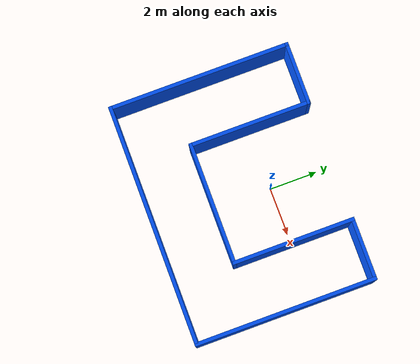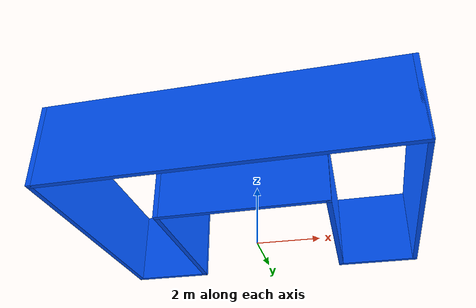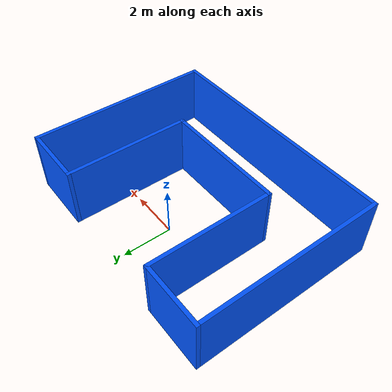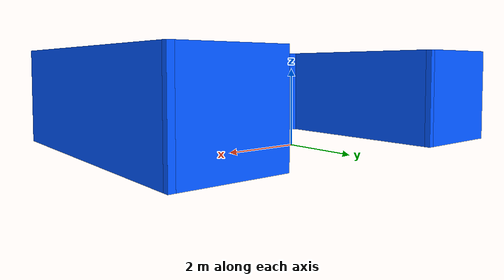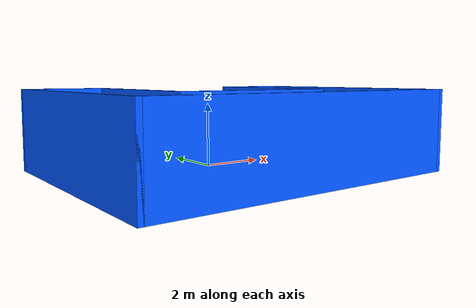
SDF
<?xml version='1.0'?>
<sdf version='1.6'>
  <model name='corridor2'>
    <pose frame=''>0 -1.25 0 0 -0 0</pose>
    <link name='Wall_1'>
      <collision name='Wall_1_Collision'>
        <geometry>
          <box>
            <size>7.65 0.15 2.5</size>
          </box>
        </geometry>
        <pose frame=''>0 0 1.25 0 -0 0</pose>
      </collision>
      <visual name='Wall_1_Visual'>
        <pose frame=''>0 0 1.25 0 -0 0</pose>
        <geometry>
          <box>
            <size>7.65 0.15 2.5</size>
          </box>
        </geometry>
        <material>
          <script>
            <uri>file://media/materials/scripts/gazebo.material</uri>
            <name>Gazebo/Grey</name>
          </script>
          <ambient>0 0.333333 1 1</ambient>
        </material>
        <meta>
          <layer>0</layer>
        </meta>
      </visual>
      <pose frame=''>-5 0 0 0 0 -1.5708</pose>
    </link>
    <link name='Wall_2'>
      <collision name='Wall_2_Collision'>
        <geometry>
          <box>
            <size>10.15 0.15 2.5</size>
          </box>
        </geometry>
        <pose frame=''>0 0 1.25 0 -0 0</pose>
      </collision>
      <visual name='Wall_2_Visual'>
        <pose frame=''>0 0 1.25 0 -0 0</pose>
        <geometry>
          <box>
            <size>10.15 0.15 2.5</size>
          </box>
        </geometry>
        <material>
          <script>
            <uri>file://media/materials/scripts/gazebo.material</uri>
            <name>Gazebo/Grey</name>
          </script>
          <ambient>0 0.333333 1 1</ambient>
        </material>
        <meta>
          <layer>0</layer>
        </meta>
      </visual>
      <pose frame=''>0 -3.75 0 0 -0 0</pose>
    </link>
    <link name='Wall_3'>
      <collision name='Wall_3_Collision'>
        <geometry>
          <box>
            <size>7.65 0.15 2.5</size>
          </box>
        </geometry>
        <pose frame=''>0 0 1.25 0 -0 0</pose>
      </collision>
      <visual name='Wall_3_Visual'>
        <pose frame=''>0 0 1.25 0 -0 0</pose>
        <geometry>
          <box>
            <size>7.65 0.15 2.5</size>
          </box>
        </geometry>
        <material>
          <script>
            <uri>file://media/materials/scripts/gazebo.material</uri>
            <name>Gazebo/Grey</name>
          </script>
          <ambient>0 0.333333 1 1</ambient>
        </material>
        <meta>
          <layer>0</layer>
        </meta>
      </visual>
      <pose frame=''>5 0 0 0 -0 1.5708</pose>
    </link>
    <link name='Wall_4'>
      <collision name='Wall_4_Collision'>
        <geometry>
          <box>
            <size>2.65 0.15 2.5</size>
          </box>
        </geometry>
        <pose frame=''>0 0 1.25 0 -0 0</pose>
      </collision>
      <visual name='Wall_4_Visual'>
        <pose frame=''>0 0 1.25 0 -0 0</pose>
        <geometry>
          <box>
            <size>2.65 0.15 2.5</size>
          </box>
        </geometry>
        <material>
          <script>
            <uri>file://media/materials/scripts/gazebo.material</uri>
            <name>Gazebo/Grey</name>
          </script>
          <ambient>0 0.333333 1 1</ambient>
        </material>
        <meta>
          <layer>0</layer>
        </meta>
      </visual>
      <pose frame=''>3.75 3.75 0 0 -0 3.14159</pose>
    </link>
    <link name='Wall_5'>
      <collision name='Wall_5_Collision'>
        <geometry>
          <box>
            <size>5.15 0.15 2.5</size>
          </box>
        </geometry>
        <pose frame=''>0 0 1.25 0 -0 0</pose>
      </collision>
      <visual name='Wall_5_Visual'>
        <pose frame=''>0 0 1.25 0 -0 0</pose>
        <geometry>
          <box>
            <size>5.15 0.15 2.5</size>
          </box>
        </geometry>
        <material>
          <script>
            <uri>file://media/materials/scripts/gazebo.material</uri>
            <name>Gazebo/Grey</name>
          </script>
          <ambient>0 0.333333 1 1</ambient>
        </material>
        <meta>
          <layer>0</layer>
        </meta>
      </visual>
      <pose frame=''>2.5 1.25 0 0 0 -1.5708</pose>
    </link>
    <link name='Wall_6'>
      <collision name='Wall_6_Collision'>
        <geometry>
          <box>
            <size>5.15 0.15 2.5</size>
          </box>
        </geometry>
        <pose frame=''>0 0 1.25 0 -0 0</pose>
      </collision>
      <visual name='Wall_6_Visual'>
        <pose frame=''>0 0 1.25 0 -0 0</pose>
        <geometry>
          <box>
            <size>5.15 0.15 2.5</size>
          </box>
        </geometry>
        <material>
          <script>
            <uri>file://media/materials/scripts/gazebo.material</uri>
            <name>Gazebo/Grey</name>
          </script>
          <ambient>0 0.333333 1 1</ambient>
        </material>
        <meta>
          <layer>0</layer>
        </meta>
      </visual>
      <pose frame=''>0 -1.25 0 0 -0 3.14159</pose>
    </link>
    <link name='Wall_7'>
      <collision name='Wall_7_Collision'>
        <geometry>
          <box>
            <size>5.15 0.15 2.5</size>
          </box>
        </geometry>
        <pose frame=''>0 0 1.25 0 -0 0</pose>
      </collision>
      <visual name='Wall_7_Visual'>
        <pose frame=''>0 0 1.25 0 -0 0</pose>
        <geometry>
          <box>
            <size>5.15 0.15 2.5</size>
          </box>
        </geometry>
        <material>
          <script>
            <uri>file://media/materials/scripts/gazebo.material</uri>
            <name>Gazebo/Grey</name>
          </script>
          <ambient>0 0.333333 1 1</ambient>
        </material>
        <meta>
          <layer>0</layer>
        </meta>
      </visual>
      <pose frame=''>-2.5 1.25 0 0 -0 1.5708</pose>
    </link>
    <link name='Wall_8'>
      <collision name='Wall_8_Collision'>
        <geometry>
          <box>
            <size>2.65 0.15 2.5</size>
          </box>
        </geometry>
        <pose frame=''>0 0 1.25 0 -0 0</pose>
      </collision>
      <visual name='Wall_8_Visual'>
        <pose frame=''>0 0 1.25 0 -0 0</pose>
        <geometry>
          <box>
            <size>2.65 0.15 2.5</size>
          </box>
        </geometry>
        <material>
          <script>
            <uri>file://media/materials/scripts/gazebo.material</uri>
            <name>Gazebo/Grey</name>
          </script>
          <ambient>0 0.333333 1 1</ambient>
        </material>
        <meta>
          <layer>0</layer>
        </meta>
      </visual>
      <pose frame=''>-3.75 3.75 0 0 -0 3.14159</pose>
    </link>
    <static>1</static>
  </model>
</sdf>
